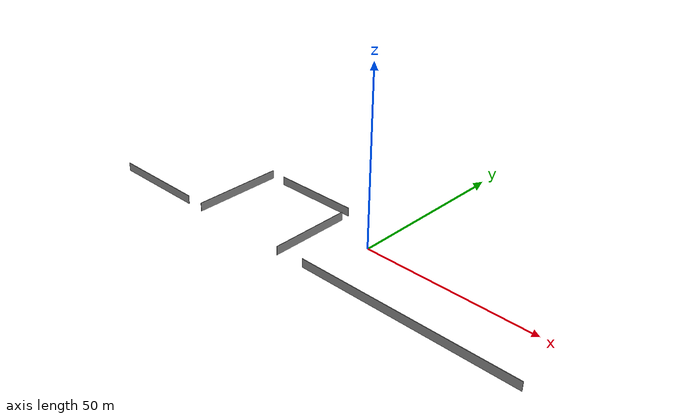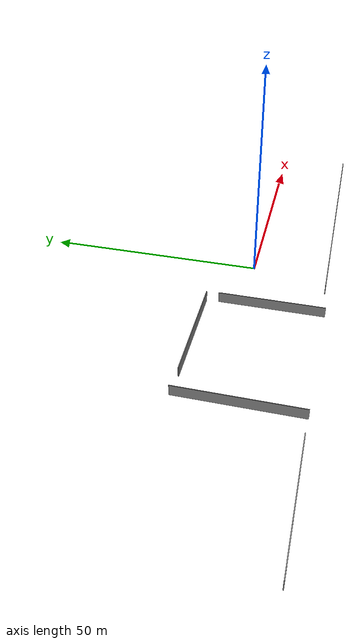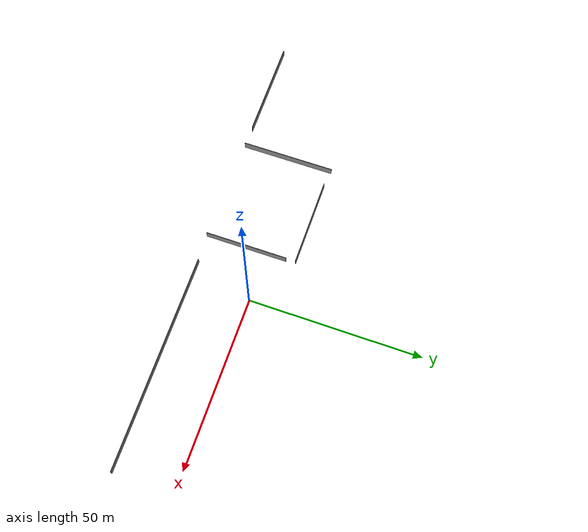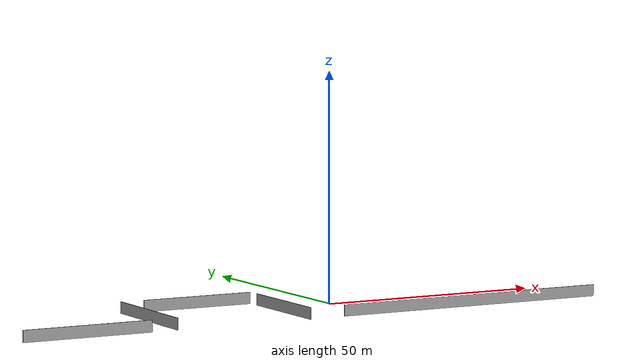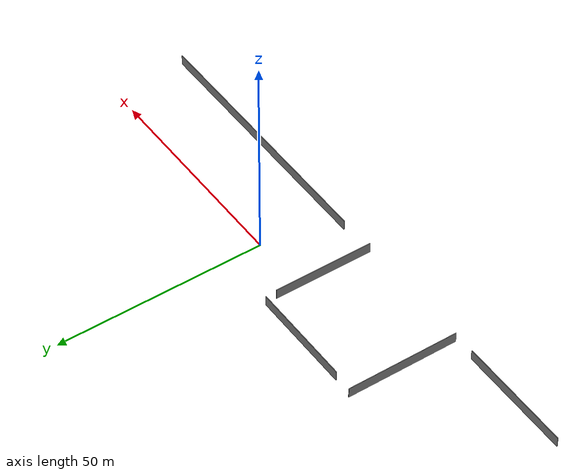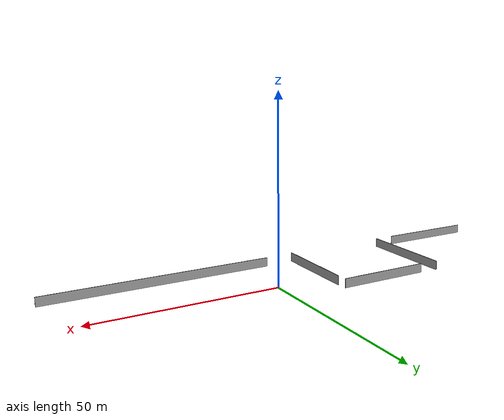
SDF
<?xml version='1.0'?>
<sdf version='1.7'>
  <model name='maze1_easy'>
    <pose>-11.2418 -4.44525 0 0 -0 0</pose>
    <link name='Wall_16'>
      <collision name='Wall_16_Collision'>
        <geometry>
          <box>
            <size>28.25 0.15 2.5</size>
          </box>
        </geometry>
        <pose>0 0 1.25 0 -0 0</pose>
      </collision>
      <visual name='Wall_16_Visual'>
        <pose>0 0 1.25 0 -0 0</pose>
        <geometry>
          <box>
            <size>28.25 0.15 2.5</size>
          </box>
        </geometry>
        <material>
          <script>
            <uri>file://media/materials/scripts/gazebo.material</uri>
            <name>Gazebo/Grey</name>
          </script>
          <ambient>1 1 1 1</ambient>
        </material>
        <meta>
          <layer>0</layer>
        </meta>
      </visual>
      <pose>-53.5067 -12.9852 0 0 -0 0</pose>
    </link>
    <link name='Wall_18'>
      <collision name='Wall_18_Collision'>
        <geometry>
          <box>
            <size>26.75 0.15 2.5</size>
          </box>
        </geometry>
        <pose>0 0 1.25 0 -0 0</pose>
      </collision>
      <visual name='Wall_18_Visual'>
        <pose>0 0 1.25 0 -0 0</pose>
        <geometry>
          <box>
            <size>26.75 0.15 2.5</size>
          </box>
        </geometry>
        <material>
          <script>
            <uri>file://media/materials/scripts/gazebo.material</uri>
            <name>Gazebo/Grey</name>
          </script>
          <ambient>1 1 1 1</ambient>
        </material>
        <meta>
          <layer>0</layer>
        </meta>
      </visual>
      <pose>-33.7431 0.172122 0 0 -0 1.5708</pose>
    </link>
    <link name='Wall_20'>
      <collision name='Wall_20_Collision'>
        <geometry>
          <box>
            <size>25.25 0.15 2.5</size>
          </box>
        </geometry>
        <pose>0 0 1.25 0 -0 0</pose>
      </collision>
      <visual name='Wall_20_Visual'>
        <pose>0 0 1.25 0 -0 0</pose>
        <geometry>
          <box>
            <size>25.25 0.15 2.5</size>
          </box>
        </geometry>
        <material>
          <script>
            <uri>file://media/materials/scripts/gazebo.material</uri>
            <name>Gazebo/Grey</name>
          </script>
          <ambient>1 1 1 1</ambient>
        </material>
        <meta>
          <layer>0</layer>
        </meta>
      </visual>
      <pose>-16.0569 12.9813 0 0 -0 0</pose>
    </link>
    <link name='Wall_22'>
      <collision name='Wall_22_Collision'>
        <geometry>
          <box>
            <size>23.75 0.15 2.5</size>
          </box>
        </geometry>
        <pose>0 0 1.25 0 -0 0</pose>
      </collision>
      <visual name='Wall_22_Visual'>
        <pose>0 0 1.25 0 -0 0</pose>
        <geometry>
          <box>
            <size>23.75 0.15 2.5</size>
          </box>
        </geometry>
        <material>
          <script>
            <uri>file://media/materials/scripts/gazebo.material</uri>
            <name>Gazebo/Grey</name>
          </script>
          <ambient>1 1 1 1</ambient>
        </material>
        <meta>
          <layer>0</layer>
        </meta>
      </visual>
      <pose>-3.21102 -1.67212 0 0 -0 -1.5708</pose>
    </link>
    <link name='Wall_24'>
      <collision name='Wall_24_Collision'>
        <geometry>
          <box>
            <size>62.5 0.15 2.5</size>
          </box>
        </geometry>
        <pose>0 0 1.25 0 -0 0</pose>
      </collision>
      <visual name='Wall_24_Visual'>
        <pose>0 0 1.25 0 -0 0</pose>
        <geometry>
          <box>
            <size>62.5 0.15 2.5</size>
          </box>
        </geometry>
        <material>
          <script>
            <uri>file://media/materials/scripts/gazebo.material</uri>
            <name>Gazebo/Grey</name>
          </script>
          <ambient>1 1 1 1</ambient>
        </material>
        <meta>
          <layer>0</layer>
        </meta>
      </visual>
      <pose>36.3817 -12.8425 0 0 -0 0</pose>
    </link>
    <static>1</static>
  </model>
</sdf>
